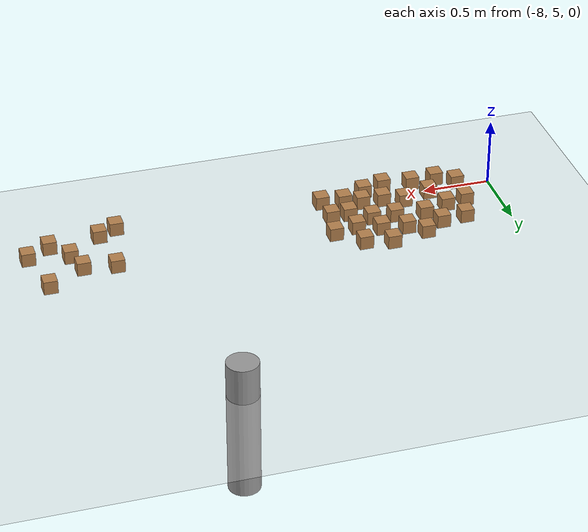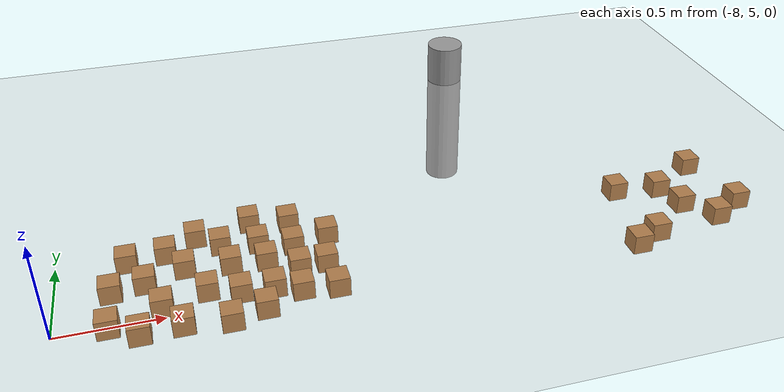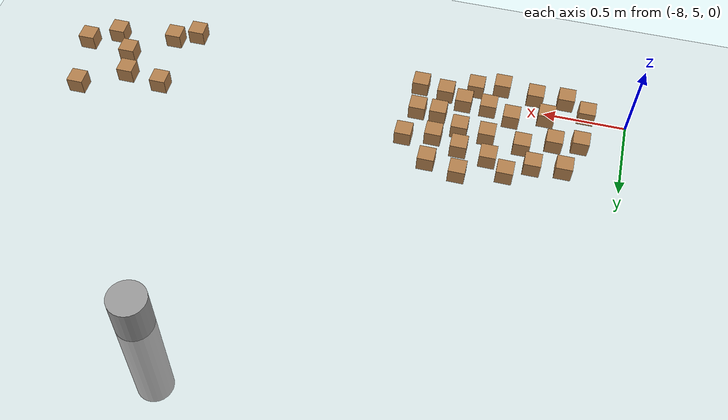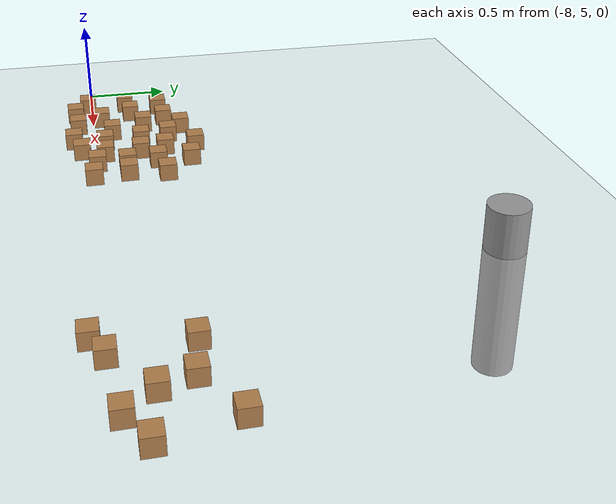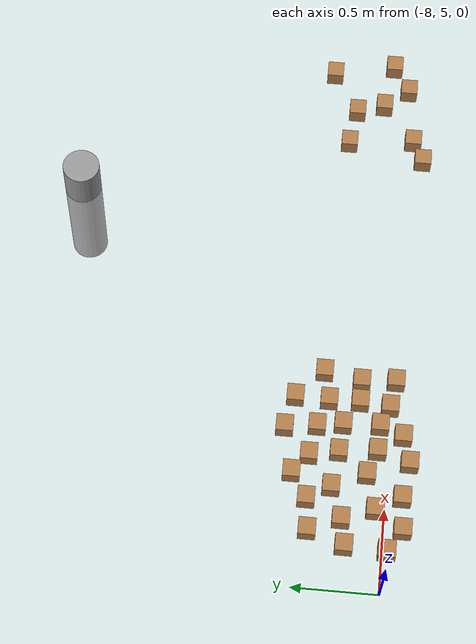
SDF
<sdf version="1.7">
 <world name="default">
  <model name="ground_plane">
   <static>1</static>
   <link name="link">
    <collision name="collision">
     <geometry><plane><normal>0 0 1</normal><size>100 100</size></plane></geometry>
     <surface>
      <contact><collide_bitmask>65535</collide_bitmask></contact>
      <friction><ode><mu>100</mu><mu2>50</mu2></ode></friction>
     </surface>
    </collision>
    <visual name="visual">
     <cast_shadows>0</cast_shadows>
     <geometry><plane><normal>0 0 1</normal><size>100 100</size></plane></geometry>
     <material>
      <script><uri>file://media/materials/scripts/gazebo.material</uri><name>Gazebo/Grey</name></script>
     </material>
    </visual>
   </link>
  </model>
  <model name="wood_cube_10cm">
   <link name="link">
    <pose>0 0 0.05 0 -0 0</pose>
    <inertial>
     <mass>0.5167</mass>
     <inertia>
      <ixx>0.000861167</ixx>
      <ixy>0</ixy>
      <ixz>0</ixz>
      <iyy>0.000861167</iyy>
      <iyz>0</iyz>
      <izz>0.000861167</izz>
     </inertia>
    </inertial>
    <collision name="collision">
     <geometry><box><size>0.1 0.1 0.1</size></box></geometry>
     <surface>
      <contact>
       <poissons_ratio>0.347</poissons_ratio>
       <elastic_modulus>8.8e+09</elastic_modulus>
       <ode><kp>100000</kp><kd>100</kd><max_vel>100</max_vel><min_depth>0.001</min_depth></ode>
      </contact>
      <friction>
       <torsional>
        <coefficient>1</coefficient>
        <use_patch_radius>0</use_patch_radius>
        <surface_radius>0.01</surface_radius>
       </torsional>
      </friction>
     </surface>
    </collision>
    <visual name="visual">
     <geometry><box><size>0.1 0.1 0.1</size></box></geometry>
     <material>
      <script><uri>file://media/materials/scripts/gazebo.material</uri><name>Gazebo/Wood</name></script>
     </material>
    </visual>
   </link>
   <pose>-4.5337 5.10533 -0.001013 0 -0 0</pose>
  </model>
  <model name="wood_cube_10cm_clone_0">
   <link name="link">
    <pose>0 0 0.05 0 -0 0</pose>
    <inertial>
     <mass>0.5167</mass>
     <inertia>
      <ixx>0.000861167</ixx>
      <ixy>0</ixy>
      <ixz>0</ixz>
      <iyy>0.000861167</iyy>
      <iyz>0</iyz>
      <izz>0.000861167</izz>
     </inertia>
    </inertial>
    <collision name="collision">
     <geometry><box><size>0.1 0.1 0.1</size></box></geometry>
     <surface>
      <contact>
       <poissons_ratio>0.347</poissons_ratio>
       <elastic_modulus>8.8e+09</elastic_modulus>
       <ode><kp>100000</kp><kd>100</kd><max_vel>100</max_vel><min_depth>0.001</min_depth></ode>
      </contact>
      <friction>
       <torsional>
        <coefficient>1</coefficient>
        <use_patch_radius>0</use_patch_radius>
        <surface_radius>0.01</surface_radius>
       </torsional>
      </friction>
     </surface>
    </collision>
    <visual name="visual">
     <geometry><box><size>0.1 0.1 0.1</size></box></geometry>
     <material>
      <script><uri>file://media/materials/scripts/gazebo.material</uri><name>Gazebo/Wood</name></script>
     </material>
    </visual>
   </link>
   <pose>-4.82741 5.1542 -0.001013 0 -0 0</pose>
  </model>
  <model name="wood_cube_10cm_clone_1">
   <link name="link">
    <pose>0 0 0.05 0 -0 0</pose>
    <inertial>
     <mass>0.5167</mass>
     <inertia>
      <ixx>0.000861167</ixx>
      <ixy>0</ixy>
      <ixz>0</ixz>
      <iyy>0.000861167</iyy>
      <iyz>0</iyz>
      <izz>0.000861167</izz>
     </inertia>
    </inertial>
    <collision name="collision">
     <geometry><box><size>0.1 0.1 0.1</size></box></geometry>
     <surface>
      <contact>
       <poissons_ratio>0.347</poissons_ratio>
       <elastic_modulus>8.8e+09</elastic_modulus>
       <ode><kp>100000</kp><kd>100</kd><max_vel>100</max_vel><min_depth>0.001</min_depth></ode>
      </contact>
      <friction>
       <torsional>
        <coefficient>1</coefficient>
        <use_patch_radius>0</use_patch_radius>
        <surface_radius>0.01</surface_radius>
       </torsional>
      </friction>
     </surface>
    </collision>
    <visual name="visual">
     <geometry><box><size>0.1 0.1 0.1</size></box></geometry>
     <material>
      <script><uri>file://media/materials/scripts/gazebo.material</uri><name>Gazebo/Wood</name></script>
     </material>
    </visual>
   </link>
   <pose>-5.21036 4.89458 -0.001013 0 -0 0</pose>
  </model>
  <model name="wood_cube_10cm_clone_2">
   <link name="link">
    <pose>0 0 0.05 0 -0 0</pose>
    <inertial>
     <mass>0.5167</mass>
     <inertia>
      <ixx>0.000861167</ixx>
      <ixy>0</ixy>
      <ixz>0</ixz>
      <iyy>0.000861167</iyy>
      <iyz>0</iyz>
      <izz>0.000861167</izz>
     </inertia>
    </inertial>
    <collision name="collision">
     <geometry><box><size>0.1 0.1 0.1</size></box></geometry>
     <surface>
      <contact>
       <poissons_ratio>0.347</poissons_ratio>
       <elastic_modulus>8.8e+09</elastic_modulus>
       <ode><kp>100000</kp><kd>100</kd><max_vel>100</max_vel><min_depth>0.001</min_depth></ode>
      </contact>
      <friction>
       <torsional>
        <coefficient>1</coefficient>
        <use_patch_radius>0</use_patch_radius>
        <surface_radius>0.01</surface_radius>
       </torsional>
      </friction>
     </surface>
    </collision>
    <visual name="visual">
     <geometry><box><size>0.1 0.1 0.1</size></box></geometry>
     <material>
      <script><uri>file://media/materials/scripts/gazebo.material</uri><name>Gazebo/Wood</name></script>
     </material>
    </visual>
   </link>
   <pose>-5.1145 5.35732 -0.001013 0 -0 0</pose>
  </model>
  <model name="wood_cube_10cm_clone_3">
   <link name="link">
    <pose>0 0 0.05 0 -0 0</pose>
    <inertial>
     <mass>0.5167</mass>
     <inertia>
      <ixx>0.000861167</ixx>
      <ixy>0</ixy>
      <ixz>0</ixz>
      <iyy>0.000861167</iyy>
      <iyz>0</iyz>
      <izz>0.000861167</izz>
     </inertia>
    </inertial>
    <collision name="collision">
     <geometry><box><size>0.1 0.1 0.1</size></box></geometry>
     <surface>
      <contact>
       <poissons_ratio>0.347</poissons_ratio>
       <elastic_modulus>8.8e+09</elastic_modulus>
       <ode><kp>100000</kp><kd>100</kd><max_vel>100</max_vel><min_depth>0.001</min_depth></ode>
      </contact>
      <friction>
       <torsional>
        <coefficient>1</coefficient>
        <use_patch_radius>0</use_patch_radius>
        <surface_radius>0.01</surface_radius>
       </torsional>
      </friction>
     </surface>
    </collision>
    <visual name="visual">
     <geometry><box><size>0.1 0.1 0.1</size></box></geometry>
     <material>
      <script><uri>file://media/materials/scripts/gazebo.material</uri><name>Gazebo/Wood</name></script>
     </material>
    </visual>
   </link>
   <pose>-4.61327 5.48003 -0.001013 0 -0 0</pose>
  </model>
  <model name="wood_cube_10cm_clone_4">
   <link name="link">
    <pose>0 0 0.05 0 -0 0</pose>
    <inertial>
     <mass>0.5167</mass>
     <inertia>
      <ixx>0.000861167</ixx>
      <ixy>0</ixy>
      <ixz>0</ixz>
      <iyy>0.000861167</iyy>
      <iyz>0</iyz>
      <izz>0.000861167</izz>
     </inertia>
    </inertial>
    <collision name="collision">
     <geometry><box><size>0.1 0.1 0.1</size></box></geometry>
     <surface>
      <contact>
       <poissons_ratio>0.347</poissons_ratio>
       <elastic_modulus>8.8e+09</elastic_modulus>
       <ode><kp>100000</kp><kd>100</kd><max_vel>100</max_vel><min_depth>0.001</min_depth></ode>
      </contact>
      <friction>
       <torsional>
        <coefficient>1</coefficient>
        <use_patch_radius>0</use_patch_radius>
        <surface_radius>0.01</surface_radius>
       </torsional>
      </friction>
     </surface>
    </collision>
    <visual name="visual">
     <geometry><box><size>0.1 0.1 0.1</size></box></geometry>
     <material>
      <script><uri>file://media/materials/scripts/gazebo.material</uri><name>Gazebo/Wood</name></script>
     </material>
    </visual>
   </link>
   <pose>-4.88164 5.32159 -0.001013 0 -0 0</pose>
  </model>
  <model name="wood_cube_10cm_clone_5">
   <link name="link">
    <pose>0 0 0.05 0 -0 0</pose>
    <inertial>
     <mass>0.5167</mass>
     <inertia>
      <ixx>0.000861167</ixx>
      <ixy>0</ixy>
      <ixz>0</ixz>
      <iyy>0.000861167</iyy>
      <iyz>0</iyz>
      <izz>0.000861167</izz>
     </inertia>
    </inertial>
    <collision name="collision">
     <geometry><box><size>0.1 0.1 0.1</size></box></geometry>
     <surface>
      <contact>
       <poissons_ratio>0.347</poissons_ratio>
       <elastic_modulus>8.8e+09</elastic_modulus>
       <ode><kp>100000</kp><kd>100</kd><max_vel>100</max_vel><min_depth>0.001</min_depth></ode>
      </contact>
      <friction>
       <torsional>
        <coefficient>1</coefficient>
        <use_patch_radius>0</use_patch_radius>
        <surface_radius>0.01</surface_radius>
       </torsional>
      </friction>
     </surface>
    </collision>
    <visual name="visual">
     <geometry><box><size>0.1 0.1 0.1</size></box></geometry>
     <material>
      <script><uri>file://media/materials/scripts/gazebo.material</uri><name>Gazebo/Wood</name></script>
     </material>
    </visual>
   </link>
   <pose>-5.0744 4.96094 -0.001013 0 -0 0</pose>
  </model>
  <model name="wood_cube_10cm_clone_6">
   <link name="link">
    <pose>0 0 0.05 0 -0 0</pose>
    <inertial>
     <mass>0.5167</mass>
     <inertia>
      <ixx>0.000861167</ixx>
      <ixy>0</ixy>
      <ixz>0</ixz>
      <iyy>0.000861167</iyy>
      <iyz>0</iyz>
      <izz>0.000861167</izz>
     </inertia>
    </inertial>
    <collision name="collision">
     <geometry><box><size>0.1 0.1 0.1</size></box></geometry>
     <surface>
      <contact>
       <poissons_ratio>0.347</poissons_ratio>
       <elastic_modulus>8.8e+09</elastic_modulus>
       <ode><kp>100000</kp><kd>100</kd><max_vel>100</max_vel><min_depth>0.001</min_depth></ode>
      </contact>
      <friction>
       <torsional>
        <coefficient>1</coefficient>
        <use_patch_radius>0</use_patch_radius>
        <surface_radius>0.01</surface_radius>
       </torsional>
      </friction>
     </surface>
    </collision>
    <visual name="visual">
     <geometry><box><size>0.1 0.1 0.1</size></box></geometry>
     <material>
      <script><uri>file://media/materials/scripts/gazebo.material</uri><name>Gazebo/Wood</name></script>
     </material>
    </visual>
   </link>
   <pose>-4.70452 5.00576 -0.001013 0 -0 0</pose>
  </model>
  <model name="wood_cube_10cm_clone_2_clone_0">
   <link name="link">
    <pose>0 0 0.05 0 -0 0</pose>
    <inertial>
     <mass>0.5167</mass>
     <inertia>
      <ixx>0.000861167</ixx>
      <ixy>0</ixy>
      <ixz>0</ixz>
      <iyy>0.000861167</iyy>
      <iyz>0</iyz>
      <izz>0.000861167</izz>
     </inertia>
    </inertial>
    <collision name="collision">
     <geometry><box><size>0.1 0.1 0.1</size></box></geometry>
     <surface>
      <contact>
       <poissons_ratio>0.347</poissons_ratio>
       <elastic_modulus>8.8e+09</elastic_modulus>
       <ode><kp>100000</kp><kd>100</kd><max_vel>100</max_vel><min_depth>0.001</min_depth></ode>
      </contact>
      <friction>
       <torsional>
        <coefficient>1</coefficient>
        <use_patch_radius>0</use_patch_radius>
        <surface_radius>0.01</surface_radius>
       </torsional>
      </friction>
     </surface>
    </collision>
    <visual name="visual">
     <geometry><box><size>0.1 0.1 0.1</size></box></geometry>
     <material>
      <script><uri>file://media/materials/scripts/gazebo.material</uri><name>Gazebo/Wood</name></script>
     </material>
    </visual>
   </link>
   <pose>-7.059 4.91918 -0.001013 0 -0 0</pose>
  </model>
  <model name="wood_cube_10cm_clone_2_clone_1">
   <link name="link">
    <pose>0 0 0.05 0 -0 0</pose>
    <inertial>
     <mass>0.5167</mass>
     <inertia>
      <ixx>0.000861167</ixx>
      <ixy>0</ixy>
      <ixz>0</ixz>
      <iyy>0.000861167</iyy>
      <iyz>0</iyz>
      <izz>0.000861167</izz>
     </inertia>
    </inertial>
    <collision name="collision">
     <geometry><box><size>0.1 0.1 0.1</size></box></geometry>
     <surface>
      <contact>
       <poissons_ratio>0.347</poissons_ratio>
       <elastic_modulus>8.8e+09</elastic_modulus>
       <ode><kp>100000</kp><kd>100</kd><max_vel>100</max_vel><min_depth>0.001</min_depth></ode>
      </contact>
      <friction>
       <torsional>
        <coefficient>1</coefficient>
        <use_patch_radius>0</use_patch_radius>
        <surface_radius>0.01</surface_radius>
       </torsional>
      </friction>
     </surface>
    </collision>
    <visual name="visual">
     <geometry><box><size>0.1 0.1 0.1</size></box></geometry>
     <material>
      <script><uri>file://media/materials/scripts/gazebo.material</uri><name>Gazebo/Wood</name></script>
     </material>
    </visual>
   </link>
   <pose>-6.88145 5.00376 -0.001013 0 -0 0</pose>
  </model>
  <model name="wood_cube_10cm_clone_2_clone_2">
   <link name="link">
    <pose>0 0 0.05 0 -0 0</pose>
    <inertial>
     <mass>0.5167</mass>
     <inertia>
      <ixx>0.000861167</ixx>
      <ixy>0</ixy>
      <ixz>0</ixz>
      <iyy>0.000861167</iyy>
      <iyz>0</iyz>
      <izz>0.000861167</izz>
     </inertia>
    </inertial>
    <collision name="collision">
     <geometry><box><size>0.1 0.1 0.1</size></box></geometry>
     <surface>
      <contact>
       <poissons_ratio>0.347</poissons_ratio>
       <elastic_modulus>8.8e+09</elastic_modulus>
       <ode><kp>100000</kp><kd>100</kd><max_vel>100</max_vel><min_depth>0.001</min_depth></ode>
      </contact>
      <friction>
       <torsional>
        <coefficient>1</coefficient>
        <use_patch_radius>0</use_patch_radius>
        <surface_radius>0.01</surface_radius>
       </torsional>
      </friction>
     </surface>
    </collision>
    <visual name="visual">
     <geometry><box><size>0.1 0.1 0.1</size></box></geometry>
     <material>
      <script><uri>file://media/materials/scripts/gazebo.material</uri><name>Gazebo/Wood</name></script>
     </material>
    </visual>
   </link>
   <pose>-7.00345 5.05488 -0.001013 0 -0 0</pose>
  </model>
  <model name="wood_cube_10cm_clone_2_clone_3">
   <link name="link">
    <pose>0 0 0.05 0 -0 0</pose>
    <inertial>
     <mass>0.5167</mass>
     <inertia>
      <ixx>0.000861167</ixx>
      <ixy>0</ixy>
      <ixz>0</ixz>
      <iyy>0.000861167</iyy>
      <iyz>0</iyz>
      <izz>0.000861167</izz>
     </inertia>
    </inertial>
    <collision name="collision">
     <geometry><box><size>0.1 0.1 0.1</size></box></geometry>
     <surface>
      <contact>
       <poissons_ratio>0.347</poissons_ratio>
       <elastic_modulus>8.8e+09</elastic_modulus>
       <ode><kp>100000</kp><kd>100</kd><max_vel>100</max_vel><min_depth>0.001</min_depth></ode>
      </contact>
      <friction>
       <torsional>
        <coefficient>1</coefficient>
        <use_patch_radius>0</use_patch_radius>
        <surface_radius>0.01</surface_radius>
       </torsional>
      </friction>
     </surface>
    </collision>
    <visual name="visual">
     <geometry><box><size>0.1 0.1 0.1</size></box></geometry>
     <material>
      <script><uri>file://media/materials/scripts/gazebo.material</uri><name>Gazebo/Wood</name></script>
     </material>
    </visual>
   </link>
   <pose>-6.86543 5.17872 -0.001013 0 -0 0</pose>
  </model>
  <model name="wood_cube_10cm_clone_2_clone_4">
   <link name="link">
    <pose>0 0 0.05 0 -0 0</pose>
    <inertial>
     <mass>0.5167</mass>
     <inertia>
      <ixx>0.000861167</ixx>
      <ixy>0</ixy>
      <ixz>0</ixz>
      <iyy>0.000861167</iyy>
      <iyz>0</iyz>
      <izz>0.000861167</izz>
     </inertia>
    </inertial>
    <collision name="collision">
     <geometry><box><size>0.1 0.1 0.1</size></box></geometry>
     <surface>
      <contact>
       <poissons_ratio>0.347</poissons_ratio>
       <elastic_modulus>8.8e+09</elastic_modulus>
       <ode><kp>100000</kp><kd>100</kd><max_vel>100</max_vel><min_depth>0.001</min_depth></ode>
      </contact>
      <friction>
       <torsional>
        <coefficient>1</coefficient>
        <use_patch_radius>0</use_patch_radius>
        <surface_radius>0.01</surface_radius>
       </torsional>
      </friction>
     </surface>
    </collision>
    <visual name="visual">
     <geometry><box><size>0.1 0.1 0.1</size></box></geometry>
     <material>
      <script><uri>file://media/materials/scripts/gazebo.material</uri><name>Gazebo/Wood</name></script>
     </material>
    </visual>
   </link>
   <pose>-7.01286 5.26888 -0.001013 0 -0 0</pose>
  </model>
  <model name="wood_cube_10cm_clone_2_clone_5">
   <link name="link">
    <pose>0 0 0.05 0 -0 0</pose>
    <inertial>
     <mass>0.5167</mass>
     <inertia>
      <ixx>0.000861167</ixx>
      <ixy>0</ixy>
      <ixz>0</ixz>
      <iyy>0.000861167</iyy>
      <iyz>0</iyz>
      <izz>0.000861167</izz>
     </inertia>
    </inertial>
    <collision name="collision">
     <geometry><box><size>0.1 0.1 0.1</size></box></geometry>
     <surface>
      <contact>
       <poissons_ratio>0.347</poissons_ratio>
       <elastic_modulus>8.8e+09</elastic_modulus>
       <ode><kp>100000</kp><kd>100</kd><max_vel>100</max_vel><min_depth>0.001</min_depth></ode>
      </contact>
      <friction>
       <torsional>
        <coefficient>1</coefficient>
        <use_patch_radius>0</use_patch_radius>
        <surface_radius>0.01</surface_radius>
       </torsional>
      </friction>
     </surface>
    </collision>
    <visual name="visual">
     <geometry><box><size>0.1 0.1 0.1</size></box></geometry>
     <material>
      <script><uri>file://media/materials/scripts/gazebo.material</uri><name>Gazebo/Wood</name></script>
     </material>
    </visual>
   </link>
   <pose>-7.15845 5.06112 -0.001013 0 -0 0</pose>
  </model>
  <model name="wood_cube_10cm_clone_2_clone_6">
   <link name="link">
    <pose>0 0 0.05 0 -0 0</pose>
    <inertial>
     <mass>0.5167</mass>
     <inertia>
      <ixx>0.000861167</ixx>
      <ixy>0</ixy>
      <ixz>0</ixz>
      <iyy>0.000861167</iyy>
      <iyz>0</iyz>
      <izz>0.000861167</izz>
     </inertia>
    </inertial>
    <collision name="collision">
     <geometry><box><size>0.1 0.1 0.1</size></box></geometry>
     <surface>
      <contact>
       <poissons_ratio>0.347</poissons_ratio>
       <elastic_modulus>8.8e+09</elastic_modulus>
       <ode><kp>100000</kp><kd>100</kd><max_vel>100</max_vel><min_depth>0.001</min_depth></ode>
      </contact>
      <friction>
       <torsional>
        <coefficient>1</coefficient>
        <use_patch_radius>0</use_patch_radius>
        <surface_radius>0.01</surface_radius>
       </torsional>
      </friction>
     </surface>
    </collision>
    <visual name="visual">
     <geometry><box><size>0.1 0.1 0.1</size></box></geometry>
     <material>
      <script><uri>file://media/materials/scripts/gazebo.material</uri><name>Gazebo/Wood</name></script>
     </material>
    </visual>
   </link>
   <pose>-7.21871 4.87418 -0.001013 0 -0 0</pose>
  </model>
  <model name="wood_cube_10cm_clone_2_clone_8">
   <link name="link">
    <pose>0 0 0.05 0 -0 0</pose>
    <inertial>
     <mass>0.5167</mass>
     <inertia>
      <ixx>0.000861167</ixx>
      <ixy>0</ixy>
      <ixz>0</ixz>
      <iyy>0.000861167</iyy>
      <iyz>0</iyz>
      <izz>0.000861167</izz>
     </inertia>
    </inertial>
    <collision name="collision">
     <geometry><box><size>0.1 0.1 0.1</size></box></geometry>
     <surface>
      <contact>
       <poissons_ratio>0.347</poissons_ratio>
       <elastic_modulus>8.8e+09</elastic_modulus>
       <ode><kp>100000</kp><kd>100</kd><max_vel>100</max_vel><min_depth>0.001</min_depth></ode>
      </contact>
      <friction>
       <torsional>
        <coefficient>1</coefficient>
        <use_patch_radius>0</use_patch_radius>
        <surface_radius>0.01</surface_radius>
       </torsional>
      </friction>
     </surface>
    </collision>
    <visual name="visual">
     <geometry><box><size>0.1 0.1 0.1</size></box></geometry>
     <material>
      <script><uri>file://media/materials/scripts/gazebo.material</uri><name>Gazebo/Wood</name></script>
     </material>
    </visual>
   </link>
   <pose>-7.30695 5.11348 -0.001013 0 -0 0</pose>
  </model>
  <model name="wood_cube_10cm_clone_2_clone_9">
   <link name="link">
    <pose>0 0 0.05 0 -0 0</pose>
    <inertial>
     <mass>0.5167</mass>
     <inertia>
      <ixx>0.000861167</ixx>
      <ixy>0</ixy>
      <ixz>0</ixz>
      <iyy>0.000861167</iyy>
      <iyz>0</iyz>
      <izz>0.000861167</izz>
     </inertia>
    </inertial>
    <collision name="collision">
     <geometry><box><size>0.1 0.1 0.1</size></box></geometry>
     <surface>
      <contact>
       <poissons_ratio>0.347</poissons_ratio>
       <elastic_modulus>8.8e+09</elastic_modulus>
       <ode><kp>100000</kp><kd>100</kd><max_vel>100</max_vel><min_depth>0.001</min_depth></ode>
      </contact>
      <friction>
       <torsional>
        <coefficient>1</coefficient>
        <use_patch_radius>0</use_patch_radius>
        <surface_radius>0.01</surface_radius>
       </torsional>
      </friction>
     </surface>
    </collision>
    <visual name="visual">
     <geometry><box><size>0.1 0.1 0.1</size></box></geometry>
     <material>
      <script><uri>file://media/materials/scripts/gazebo.material</uri><name>Gazebo/Wood</name></script>
     </material>
    </visual>
   </link>
   <pose>-7.18268 5.28295 -0.001013 0 -0 0</pose>
  </model>
  <model name="wood_cube_10cm_clone_2_clone_10">
   <link name="link">
    <pose>0 0 0.05 0 -0 0</pose>
    <inertial>
     <mass>0.5167</mass>
     <inertia>
      <ixx>0.000861167</ixx>
      <ixy>0</ixy>
      <ixz>0</ixz>
      <iyy>0.000861167</iyy>
      <iyz>0</iyz>
      <izz>0.000861167</izz>
     </inertia>
    </inertial>
    <collision name="collision">
     <geometry><box><size>0.1 0.1 0.1</size></box></geometry>
     <surface>
      <contact>
       <poissons_ratio>0.347</poissons_ratio>
       <elastic_modulus>8.8e+09</elastic_modulus>
       <ode><kp>100000</kp><kd>100</kd><max_vel>100</max_vel><min_depth>0.001</min_depth></ode>
      </contact>
      <friction>
       <torsional>
        <coefficient>1</coefficient>
        <use_patch_radius>0</use_patch_radius>
        <surface_radius>0.01</surface_radius>
       </torsional>
      </friction>
     </surface>
    </collision>
    <visual name="visual">
     <geometry><box><size>0.1 0.1 0.1</size></box></geometry>
     <material>
      <script><uri>file://media/materials/scripts/gazebo.material</uri><name>Gazebo/Wood</name></script>
     </material>
    </visual>
   </link>
   <pose>-6.86883 5.35972 -0.001013 0 -0 0</pose>
  </model>
  <model name="wood_cube_10cm_clone_2_clone_11">
   <link name="link">
    <pose>0 0 0.05 0 -0 0</pose>
    <inertial>
     <mass>0.5167</mass>
     <inertia>
      <ixx>0.000861167</ixx>
      <ixy>0</ixy>
      <ixz>0</ixz>
      <iyy>0.000861167</iyy>
      <iyz>0</iyz>
      <izz>0.000861167</izz>
     </inertia>
    </inertial>
    <collision name="collision">
     <geometry><box><size>0.1 0.1 0.1</size></box></geometry>
     <surface>
      <contact>
       <poissons_ratio>0.347</poissons_ratio>
       <elastic_modulus>8.8e+09</elastic_modulus>
       <ode><kp>100000</kp><kd>100</kd><max_vel>100</max_vel><min_depth>0.001</min_depth></ode>
      </contact>
      <friction>
       <torsional>
        <coefficient>1</coefficient>
        <use_patch_radius>0</use_patch_radius>
        <surface_radius>0.01</surface_radius>
       </torsional>
      </friction>
     </surface>
    </collision>
    <visual name="visual">
     <geometry><box><size>0.1 0.1 0.1</size></box></geometry>
     <material>
      <script><uri>file://media/materials/scripts/gazebo.material</uri><name>Gazebo/Wood</name></script>
     </material>
    </visual>
   </link>
   <pose>-7.03434 5.41807 -0.001013 0 -0 0</pose>
  </model>
  <model name="wood_cube_10cm_clone_2_clone_12">
   <link name="link">
    <pose>0 0 0.05 0 -0 0</pose>
    <inertial>
     <mass>0.5167</mass>
     <inertia>
      <ixx>0.000861167</ixx>
      <ixy>0</ixy>
      <ixz>0</ixz>
      <iyy>0.000861167</iyy>
      <iyz>0</iyz>
      <izz>0.000861167</izz>
     </inertia>
    </inertial>
    <collision name="collision">
     <geometry><box><size>0.1 0.1 0.1</size></box></geometry>
     <surface>
      <contact>
       <poissons_ratio>0.347</poissons_ratio>
       <elastic_modulus>8.8e+09</elastic_modulus>
       <ode><kp>100000</kp><kd>100</kd><max_vel>100</max_vel><min_depth>0.001</min_depth></ode>
      </contact>
      <friction>
       <torsional>
        <coefficient>1</coefficient>
        <use_patch_radius>0</use_patch_radius>
        <surface_radius>0.01</surface_radius>
       </torsional>
      </friction>
     </surface>
    </collision>
    <visual name="visual">
     <geometry><box><size>0.1 0.1 0.1</size></box></geometry>
     <material>
      <script><uri>file://media/materials/scripts/gazebo.material</uri><name>Gazebo/Wood</name></script>
     </material>
    </visual>
   </link>
   <pose>-7.216 5.45282 -0.001013 0 -0 0</pose>
  </model>
  <model name="wood_cube_10cm_clone_2_clone_13">
   <link name="link">
    <pose>0 0 0.05 0 -0 0</pose>
    <inertial>
     <mass>0.5167</mass>
     <inertia>
      <ixx>0.000861167</ixx>
      <ixy>0</ixy>
      <ixz>0</ixz>
      <iyy>0.000861167</iyy>
      <iyz>0</iyz>
      <izz>0.000861167</izz>
     </inertia>
    </inertial>
    <collision name="collision">
     <geometry><box><size>0.1 0.1 0.1</size></box></geometry>
     <surface>
      <contact>
       <poissons_ratio>0.347</poissons_ratio>
       <elastic_modulus>8.8e+09</elastic_modulus>
       <ode><kp>100000</kp><kd>100</kd><max_vel>100</max_vel><min_depth>0.001</min_depth></ode>
      </contact>
      <friction>
       <torsional>
        <coefficient>1</coefficient>
        <use_patch_radius>0</use_patch_radius>
        <surface_radius>0.01</surface_radius>
       </torsional>
      </friction>
     </surface>
    </collision>
    <visual name="visual">
     <geometry><box><size>0.1 0.1 0.1</size></box></geometry>
     <material>
      <script><uri>file://media/materials/scripts/gazebo.material</uri><name>Gazebo/Wood</name></script>
     </material>
    </visual>
   </link>
   <pose>-7.3986 5.31269 -0.001013 0 -0 0</pose>
  </model>
  <model name="wood_cube_10cm_clone_2_clone_14">
   <link name="link">
    <pose>0 0 0.05 0 -0 0</pose>
    <inertial>
     <mass>0.5167</mass>
     <inertia>
      <ixx>0.000861167</ixx>
      <ixy>0</ixy>
      <ixz>0</ixz>
      <iyy>0.000861167</iyy>
      <iyz>0</iyz>
      <izz>0.000861167</izz>
     </inertia>
    </inertial>
    <collision name="collision">
     <geometry><box><size>0.1 0.1 0.1</size></box></geometry>
     <surface>
      <contact>
       <poissons_ratio>0.347</poissons_ratio>
       <elastic_modulus>8.8e+09</elastic_modulus>
       <ode><kp>100000</kp><kd>100</kd><max_vel>100</max_vel><min_depth>0.001</min_depth></ode>
      </contact>
      <friction>
       <torsional>
        <coefficient>1</coefficient>
        <use_patch_radius>0</use_patch_radius>
        <surface_radius>0.01</surface_radius>
       </torsional>
      </friction>
     </surface>
    </collision>
    <visual name="visual">
     <geometry><box><size>0.1 0.1 0.1</size></box></geometry>
     <material>
      <script><uri>file://media/materials/scripts/gazebo.material</uri><name>Gazebo/Wood</name></script>
     </material>
    </visual>
   </link>
   <pose>-7.42967 4.90556 -0.001013 0 -0 0</pose>
  </model>
  <model name="wood_cube_10cm_clone_2_clone_16">
   <link name="link">
    <pose>0 0 0.05 0 -0 0</pose>
    <inertial>
     <mass>0.5167</mass>
     <inertia>
      <ixx>0.000861167</ixx>
      <ixy>0</ixy>
      <ixz>0</ixz>
      <iyy>0.000861167</iyy>
      <iyz>0</iyz>
      <izz>0.000861167</izz>
     </inertia>
    </inertial>
    <collision name="collision">
     <geometry><box><size>0.1 0.1 0.1</size></box></geometry>
     <surface>
      <contact>
       <poissons_ratio>0.347</poissons_ratio>
       <elastic_modulus>8.8e+09</elastic_modulus>
       <ode><kp>100000</kp><kd>100</kd><max_vel>100</max_vel><min_depth>0.001</min_depth></ode>
      </contact>
      <friction>
       <torsional>
        <coefficient>1</coefficient>
        <use_patch_radius>0</use_patch_radius>
        <surface_radius>0.01</surface_radius>
       </torsional>
      </friction>
     </surface>
    </collision>
    <visual name="visual">
     <geometry><box><size>0.1 0.1 0.1</size></box></geometry>
     <material>
      <script><uri>file://media/materials/scripts/gazebo.material</uri><name>Gazebo/Wood</name></script>
     </material>
    </visual>
   </link>
   <pose>-7.5154 5.05494 -0.001013 0 -0 0</pose>
  </model>
  <model name="wood_cube_10cm_clone_2_clone_18">
   <link name="link">
    <pose>0 0 0.05 0 -0 0</pose>
    <inertial>
     <mass>0.5167</mass>
     <inertia>
      <ixx>0.000861167</ixx>
      <ixy>0</ixy>
      <ixz>0</ixz>
      <iyy>0.000861167</iyy>
      <iyz>0</iyz>
      <izz>0.000861167</izz>
     </inertia>
    </inertial>
    <collision name="collision">
     <geometry><box><size>0.1 0.1 0.1</size></box></geometry>
     <surface>
      <contact>
       <poissons_ratio>0.347</poissons_ratio>
       <elastic_modulus>8.8e+09</elastic_modulus>
       <ode><kp>100000</kp><kd>100</kd><max_vel>100</max_vel><min_depth>0.001</min_depth></ode>
      </contact>
      <friction>
       <torsional>
        <coefficient>1</coefficient>
        <use_patch_radius>0</use_patch_radius>
        <surface_radius>0.01</surface_radius>
       </torsional>
      </friction>
     </surface>
    </collision>
    <visual name="visual">
     <geometry><box><size>0.1 0.1 0.1</size></box></geometry>
     <material>
      <script><uri>file://media/materials/scripts/gazebo.material</uri><name>Gazebo/Wood</name></script>
     </material>
    </visual>
   </link>
   <pose>-7.61858 4.89383 -0.001013 0 -0 0</pose>
  </model>
  <model name="wood_cube_10cm_clone_2_clone_19">
   <link name="link">
    <pose>0 0 0.05 0 -0 0</pose>
    <inertial>
     <mass>0.5167</mass>
     <inertia>
      <ixx>0.000861167</ixx>
      <ixy>0</ixy>
      <ixz>0</ixz>
      <iyy>0.000861167</iyy>
      <iyz>0</iyz>
      <izz>0.000861167</izz>
     </inertia>
    </inertial>
    <collision name="collision">
     <geometry><box><size>0.1 0.1 0.1</size></box></geometry>
     <surface>
      <contact>
       <poissons_ratio>0.347</poissons_ratio>
       <elastic_modulus>8.8e+09</elastic_modulus>
       <ode><kp>100000</kp><kd>100</kd><max_vel>100</max_vel><min_depth>0.001</min_depth></ode>
      </contact>
      <friction>
       <torsional>
        <coefficient>1</coefficient>
        <use_patch_radius>0</use_patch_radius>
        <surface_radius>0.01</surface_radius>
       </torsional>
      </friction>
     </surface>
    </collision>
    <visual name="visual">
     <geometry><box><size>0.1 0.1 0.1</size></box></geometry>
     <material>
      <script><uri>file://media/materials/scripts/gazebo.material</uri><name>Gazebo/Wood</name></script>
     </material>
    </visual>
   </link>
   <pose>-7.58537 5.24407 -0.001013 0 -0 0</pose>
  </model>
  <model name="wood_cube_10cm_clone_2_clone_20">
   <link name="link">
    <pose>0 0 0.05 0 -0 0</pose>
    <inertial>
     <mass>0.5167</mass>
     <inertia>
      <ixx>0.000861167</ixx>
      <ixy>0</ixy>
      <ixz>0</ixz>
      <iyy>0.000861167</iyy>
      <iyz>0</iyz>
      <izz>0.000861167</izz>
     </inertia>
    </inertial>
    <collision name="collision">
     <geometry><box><size>0.1 0.1 0.1</size></box></geometry>
     <surface>
      <contact>
       <poissons_ratio>0.347</poissons_ratio>
       <elastic_modulus>8.8e+09</elastic_modulus>
       <ode><kp>100000</kp><kd>100</kd><max_vel>100</max_vel><min_depth>0.001</min_depth></ode>
      </contact>
      <friction>
       <torsional>
        <coefficient>1</coefficient>
        <use_patch_radius>0</use_patch_radius>
        <surface_radius>0.01</surface_radius>
       </torsional>
      </friction>
     </surface>
    </collision>
    <visual name="visual">
     <geometry><box><size>0.1 0.1 0.1</size></box></geometry>
     <material>
      <script><uri>file://media/materials/scripts/gazebo.material</uri><name>Gazebo/Wood</name></script>
     </material>
    </visual>
   </link>
   <pose>-7.48046 5.44898 -0.001013 0 -0 0</pose>
  </model>
  <model name="wood_cube_10cm_clone_2_clone_21">
   <link name="link">
    <pose>0 0 0.05 0 -0 0</pose>
    <inertial>
     <mass>0.5167</mass>
     <inertia>
      <ixx>0.000861167</ixx>
      <ixy>0</ixy>
      <ixz>0</ixz>
      <iyy>0.000861167</iyy>
      <iyz>0</iyz>
      <izz>0.000861167</izz>
     </inertia>
    </inertial>
    <collision name="collision">
     <geometry><box><size>0.1 0.1 0.1</size></box></geometry>
     <surface>
      <contact>
       <poissons_ratio>0.347</poissons_ratio>
       <elastic_modulus>8.8e+09</elastic_modulus>
       <ode><kp>100000</kp><kd>100</kd><max_vel>100</max_vel><min_depth>0.001</min_depth></ode>
      </contact>
      <friction>
       <torsional>
        <coefficient>1</coefficient>
        <use_patch_radius>0</use_patch_radius>
        <surface_radius>0.01</surface_radius>
       </torsional>
      </friction>
     </surface>
    </collision>
    <visual name="visual">
     <geometry><box><size>0.1 0.1 0.1</size></box></geometry>
     <material>
      <script><uri>file://media/materials/scripts/gazebo.material</uri><name>Gazebo/Wood</name></script>
     </material>
    </visual>
   </link>
   <pose>-7.3307 5.54451 -0.001013 0 -0 0</pose>
  </model>
  <model name="wood_cube_10cm_clone_2_clone_22">
   <link name="link">
    <pose>0 0 0.05 0 -0 0</pose>
    <inertial>
     <mass>0.5167</mass>
     <inertia>
      <ixx>0.000861167</ixx>
      <ixy>0</ixy>
      <ixz>0</ixz>
      <iyy>0.000861167</iyy>
      <iyz>0</iyz>
      <izz>0.000861167</izz>
     </inertia>
    </inertial>
    <collision name="collision">
     <geometry><box><size>0.1 0.1 0.1</size></box></geometry>
     <surface>
      <contact>
       <poissons_ratio>0.347</poissons_ratio>
       <elastic_modulus>8.8e+09</elastic_modulus>
       <ode><kp>100000</kp><kd>100</kd><max_vel>100</max_vel><min_depth>0.001</min_depth></ode>
      </contact>
      <friction>
       <torsional>
        <coefficient>1</coefficient>
        <use_patch_radius>0</use_patch_radius>
        <surface_radius>0.01</surface_radius>
       </torsional>
      </friction>
     </surface>
    </collision>
    <visual name="visual">
     <geometry><box><size>0.1 0.1 0.1</size></box></geometry>
     <material>
      <script><uri>file://media/materials/scripts/gazebo.material</uri><name>Gazebo/Wood</name></script>
     </material>
    </visual>
   </link>
   <pose>-7.05765 5.60498 -0.001013 0 -0 0</pose>
  </model>
  <model name="wood_cube_10cm_clone_2_clone_23">
   <link name="link">
    <pose>0 0 0.05 0 -0 0</pose>
    <inertial>
     <mass>0.5167</mass>
     <inertia>
      <ixx>0.000861167</ixx>
      <ixy>0</ixy>
      <ixz>0</ixz>
      <iyy>0.000861167</iyy>
      <iyz>0</iyz>
      <izz>0.000861167</izz>
     </inertia>
    </inertial>
    <collision name="collision">
     <geometry><box><size>0.1 0.1 0.1</size></box></geometry>
     <surface>
      <contact>
       <poissons_ratio>0.347</poissons_ratio>
       <elastic_modulus>8.8e+09</elastic_modulus>
       <ode><kp>100000</kp><kd>100</kd><max_vel>100</max_vel><min_depth>0.001</min_depth></ode>
      </contact>
      <friction>
       <torsional>
        <coefficient>1</coefficient>
        <use_patch_radius>0</use_patch_radius>
        <surface_radius>0.01</surface_radius>
       </torsional>
      </friction>
     </surface>
    </collision>
    <visual name="visual">
     <geometry><box><size>0.1 0.1 0.1</size></box></geometry>
     <material>
      <script><uri>file://media/materials/scripts/gazebo.material</uri><name>Gazebo/Wood</name></script>
     </material>
    </visual>
   </link>
   <pose>-6.86354 5.5574 -0.001013 0 -0 0</pose>
  </model>
  <model name="wood_cube_10cm_clone_2_clone_24">
   <link name="link">
    <pose>0 0 0.05 0 -0 0</pose>
    <inertial>
     <mass>0.5167</mass>
     <inertia>
      <ixx>0.000861167</ixx>
      <ixy>0</ixy>
      <ixz>0</ixz>
      <iyy>0.000861167</iyy>
      <iyz>0</iyz>
      <izz>0.000861167</izz>
     </inertia>
    </inertial>
    <collision name="collision">
     <geometry><box><size>0.1 0.1 0.1</size></box></geometry>
     <surface>
      <contact>
       <poissons_ratio>0.347</poissons_ratio>
       <elastic_modulus>8.8e+09</elastic_modulus>
       <ode><kp>100000</kp><kd>100</kd><max_vel>100</max_vel><min_depth>0.001</min_depth></ode>
      </contact>
      <friction>
       <torsional>
        <coefficient>1</coefficient>
        <use_patch_radius>0</use_patch_radius>
        <surface_radius>0.01</surface_radius>
       </torsional>
      </friction>
     </surface>
    </collision>
    <visual name="visual">
     <geometry><box><size>0.1 0.1 0.1</size></box></geometry>
     <material>
      <script><uri>file://media/materials/scripts/gazebo.material</uri><name>Gazebo/Wood</name></script>
     </material>
    </visual>
   </link>
   <pose>-6.69226 5.39857 -0.001013 0 -0 0</pose>
  </model>
  <model name="wood_cube_10cm_clone_2_clone_25">
   <link name="link">
    <pose>0 0 0.05 0 -0 0</pose>
    <inertial>
     <mass>0.5167</mass>
     <inertia>
      <ixx>0.000861167</ixx>
      <ixy>0</ixy>
      <ixz>0</ixz>
      <iyy>0.000861167</iyy>
      <iyz>0</iyz>
      <izz>0.000861167</izz>
     </inertia>
    </inertial>
    <collision name="collision">
     <geometry><box><size>0.1 0.1 0.1</size></box></geometry>
     <surface>
      <contact>
       <poissons_ratio>0.347</poissons_ratio>
       <elastic_modulus>8.8e+09</elastic_modulus>
       <ode><kp>100000</kp><kd>100</kd><max_vel>100</max_vel><min_depth>0.001</min_depth></ode>
      </contact>
      <friction>
       <torsional>
        <coefficient>1</coefficient>
        <use_patch_radius>0</use_patch_radius>
        <surface_radius>0.01</surface_radius>
       </torsional>
      </friction>
     </surface>
    </collision>
    <visual name="visual">
     <geometry><box><size>0.1 0.1 0.1</size></box></geometry>
     <material>
      <script><uri>file://media/materials/scripts/gazebo.material</uri><name>Gazebo/Wood</name></script>
     </material>
    </visual>
   </link>
   <pose>-6.73532 5.17859 -0.001013 0 -0 0</pose>
  </model>
  <model name="wood_cube_10cm_clone_2_clone_26">
   <link name="link">
    <pose>0 0 0.05 0 -0 0</pose>
    <inertial>
     <mass>0.5167</mass>
     <inertia>
      <ixx>0.000861167</ixx>
      <ixy>0</ixy>
      <ixz>0</ixz>
      <iyy>0.000861167</iyy>
      <iyz>0</iyz>
      <izz>0.000861167</izz>
     </inertia>
    </inertial>
    <collision name="collision">
     <geometry><box><size>0.1 0.1 0.1</size></box></geometry>
     <surface>
      <contact>
       <poissons_ratio>0.347</poissons_ratio>
       <elastic_modulus>8.8e+09</elastic_modulus>
       <ode><kp>100000</kp><kd>100</kd><max_vel>100</max_vel><min_depth>0.001</min_depth></ode>
      </contact>
      <friction>
       <torsional>
        <coefficient>1</coefficient>
        <use_patch_radius>0</use_patch_radius>
        <surface_radius>0.01</surface_radius>
       </torsional>
      </friction>
     </surface>
    </collision>
    <visual name="visual">
     <geometry><box><size>0.1 0.1 0.1</size></box></geometry>
     <material>
      <script><uri>file://media/materials/scripts/gazebo.material</uri><name>Gazebo/Wood</name></script>
     </material>
    </visual>
   </link>
   <pose>-6.71871 4.97851 -0.001013 0 -0 0</pose>
  </model>
  <model name="wood_cube_10cm_clone_2_clone_31">
   <link name="link">
    <pose>0 0 0.05 0 -0 0</pose>
    <inertial>
     <mass>0.5167</mass>
     <inertia>
      <ixx>0.000861167</ixx>
      <ixy>0</ixy>
      <ixz>0</ixz>
      <iyy>0.000861167</iyy>
      <iyz>0</iyz>
      <izz>0.000861167</izz>
     </inertia>
    </inertial>
    <collision name="collision">
     <geometry><box><size>0.1 0.1 0.1</size></box></geometry>
     <surface>
      <contact>
       <poissons_ratio>0.347</poissons_ratio>
       <elastic_modulus>8.8e+09</elastic_modulus>
       <ode><kp>100000</kp><kd>100</kd><max_vel>100</max_vel><min_depth>0.001</min_depth></ode>
      </contact>
      <friction>
       <torsional>
        <coefficient>1</coefficient>
        <use_patch_radius>0</use_patch_radius>
        <surface_radius>0.01</surface_radius>
       </torsional>
      </friction>
     </surface>
    </collision>
    <visual name="visual">
     <geometry><box><size>0.1 0.1 0.1</size></box></geometry>
     <material>
      <script><uri>file://media/materials/scripts/gazebo.material</uri><name>Gazebo/Wood</name></script>
     </material>
    </visual>
   </link>
   <pose>-7.75291 4.97621 -0.001013 0 -0 0</pose>
  </model>
  <model name="wood_cube_10cm_clone_2_clone_32">
   <link name="link">
    <pose>0 0 0.05 0 -0 0</pose>
    <inertial>
     <mass>0.5167</mass>
     <inertia>
      <ixx>0.000861167</ixx>
      <ixy>0</ixy>
      <ixz>0</ixz>
      <iyy>0.000861167</iyy>
      <iyz>0</iyz>
      <izz>0.000861167</izz>
     </inertia>
    </inertial>
    <collision name="collision">
     <geometry><box><size>0.1 0.1 0.1</size></box></geometry>
     <surface>
      <contact>
       <poissons_ratio>0.347</poissons_ratio>
       <elastic_modulus>8.8e+09</elastic_modulus>
       <ode><kp>100000</kp><kd>100</kd><max_vel>100</max_vel><min_depth>0.001</min_depth></ode>
      </contact>
      <friction>
       <torsional>
        <coefficient>1</coefficient>
        <use_patch_radius>0</use_patch_radius>
        <surface_radius>0.01</surface_radius>
       </torsional>
      </friction>
     </surface>
    </collision>
    <visual name="visual">
     <geometry><box><size>0.1 0.1 0.1</size></box></geometry>
     <material>
      <script><uri>file://media/materials/scripts/gazebo.material</uri><name>Gazebo/Wood</name></script>
     </material>
    </visual>
   </link>
   <pose>-7.74046 5.21748 -0.001013 0 -0 0</pose>
  </model>
  <model name="wood_cube_10cm_clone_2_clone_33">
   <link name="link">
    <pose>0 0 0.05 0 -0 0</pose>
    <inertial>
     <mass>0.5167</mass>
     <inertia>
      <ixx>0.000861167</ixx>
      <ixy>0</ixy>
      <ixz>0</ixz>
      <iyy>0.000861167</iyy>
      <iyz>0</iyz>
      <izz>0.000861167</izz>
     </inertia>
    </inertial>
    <collision name="collision">
     <geometry><box><size>0.1 0.1 0.1</size></box></geometry>
     <surface>
      <contact>
       <poissons_ratio>0.347</poissons_ratio>
       <elastic_modulus>8.8e+09</elastic_modulus>
       <ode><kp>100000</kp><kd>100</kd><max_vel>100</max_vel><min_depth>0.001</min_depth></ode>
      </contact>
      <friction>
       <torsional>
        <coefficient>1</coefficient>
        <use_patch_radius>0</use_patch_radius>
        <surface_radius>0.01</surface_radius>
       </torsional>
      </friction>
     </surface>
    </collision>
    <visual name="visual">
     <geometry><box><size>0.1 0.1 0.1</size></box></geometry>
     <material>
      <script><uri>file://media/materials/scripts/gazebo.material</uri><name>Gazebo/Wood</name></script>
     </material>
    </visual>
   </link>
   <pose>-7.66512 5.42995 -0.001013 0 -0 0</pose>
  </model>
  <model name="unit_cylinder_clone_3_clone_clone_12">
   <link name="link">
    <inertial>
     <mass>0.0497635</mass>
     <inertia>
      <ixx>0.00430173</ixx>
      <ixy>0</ixy>
      <ixz>0</ixz>
      <iyy>0.00430173</iyy>
      <iyz>0</iyz>
      <izz>0.00030955</izz>
     </inertia>
    </inertial>
    <pose>0.001965 -0.009653 -0.499784 1.55252 -0 0</pose>
    <visual name="visual">
     <geometry><cylinder><radius>0.111539</radius><length>1</length></cylinder></geometry>
     <material>
      <script><name>Gazebo/Grey</name><uri>file://media/materials/scripts/gazebo.material</uri></script>
      <shader type="pixel"/>
     </material>
    </visual>
    <collision name="collision">
     <geometry><cylinder><radius>0.111539</radius><length>1</length></cylinder></geometry>
     <surface>
      <friction>
       <ode><mu>1</mu><mu2>1</mu2><fdir1>0 0 0</fdir1><slip1>0</slip1><slip2>0</slip2></ode>
       <torsional>
        <coefficient>1</coefficient>
        <patch_radius>0</patch_radius>
        <surface_radius>0</surface_radius>
        <use_patch_radius>1</use_patch_radius>
        <ode><slip>0</slip></ode>
       </torsional>
      </friction>
      <bounce><restitution_coefficient>0</restitution_coefficient><threshold>1e+06</threshold></bounce>
      <contact>
       <collide_without_contact>0</collide_without_contact>
       <collide_without_contact_bitmask>1</collide_without_contact_bitmask>
       <collide_bitmask>1</collide_bitmask>
       <ode>
        <soft_cfm>0</soft_cfm>
        <soft_erp>0.2</soft_erp>
        <kp>1e+13</kp>
        <kd>1</kd>
        <max_vel>0.01</max_vel>
        <min_depth>0</min_depth>
       </ode>
       <bullet>
        <split_impulse>1</split_impulse>
        <split_impulse_penetration_threshold>-0.01</split_impulse_penetration_threshold>
        <soft_cfm>0</soft_cfm>
        <soft_erp>0.2</soft_erp>
        <kp>1e+13</kp>
        <kd>1</kd>
       </bullet>
      </contact>
     </surface>
    </collision>
   </link>
   <static>1</static>
   <pose>-5.56848 6.49181 -0.259905 1.61465 -0 0</pose>
  </model>
 </world>
</sdf>
